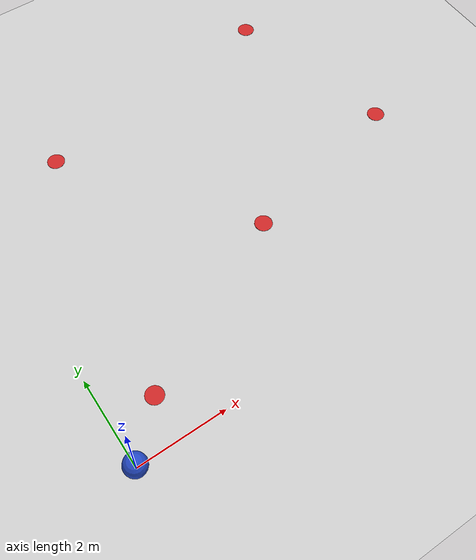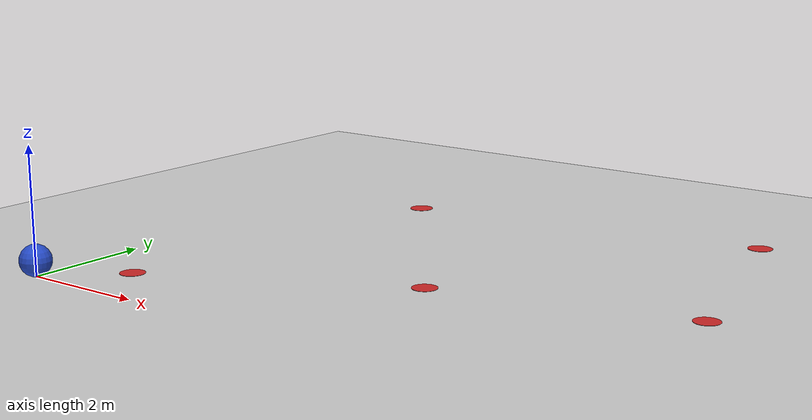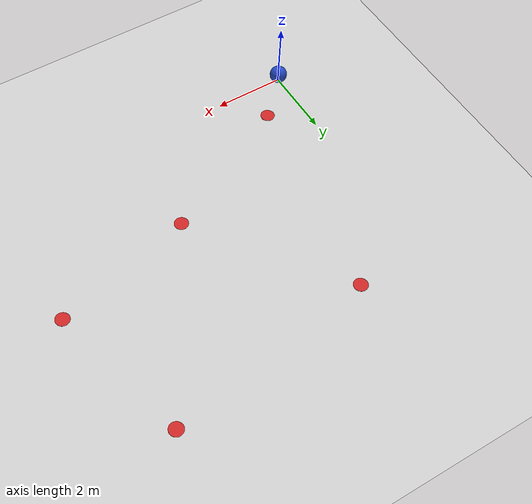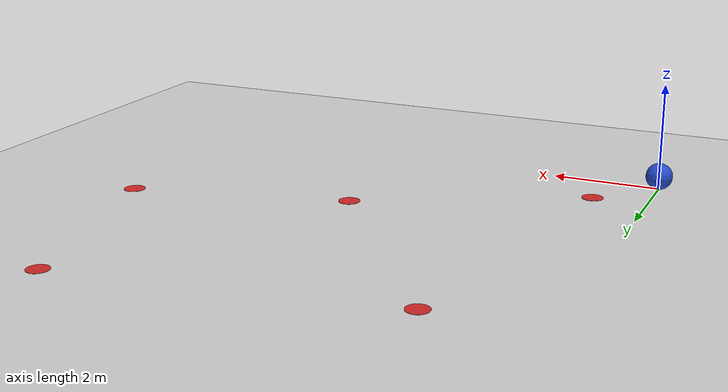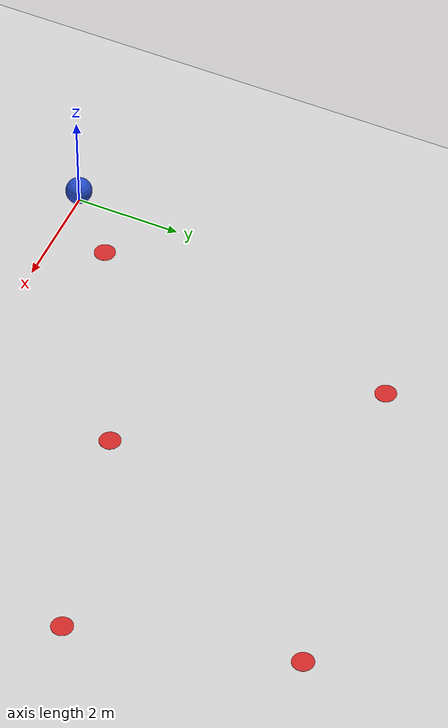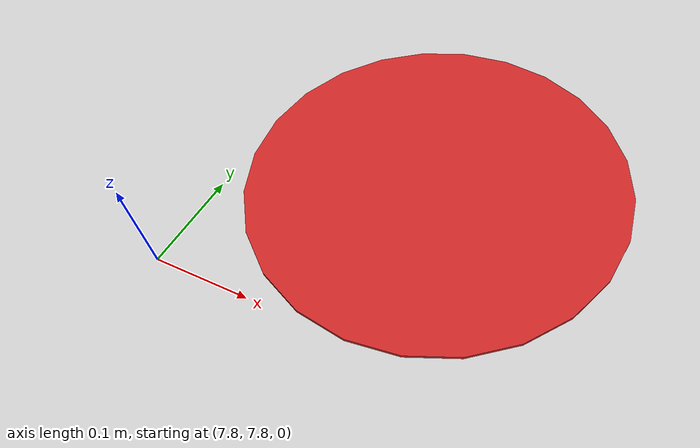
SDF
<?xml version="1.0" encoding="utf-8"?>
<sdf version="1.4">
 <world name="default">
  <!-- Ground Plane -->
  <include>
   <uri>
    model://ground_plane
   </uri>
  </include>
<?xml version="1.0" encoding="utf-8"?>
<model name="point">
 <pose>
  9 4 0 0 0 0
 </pose>
 <static>
  true
 </static>
 <link name="link">
  <collision name="collision">
   <geometry>
    <cylinder>
     <radius>
      .2
     </radius>
     <length>
      .005
     </length>
    </cylinder>
   </geometry>
  </collision>
  <visual name="visual">
   <geometry>
    <cylinder>
     <radius>
      .2
     </radius>
     <length>
      .005
     </length>
    </cylinder>
   </geometry>
   <material>
    <script>
     <uri>
      file://media/materials/scripts/gazebo.material
     </uri>
     <name>
      Gazebo/Red
     </name>
    </script>
   </material>
  </visual>
 </link>
</model><?xml version="1.0" encoding="utf-8"?>
<model name="point">
 <pose>
  8 8 0 0 0 0
 </pose>
 <static>
  true
 </static>
 <link name="link">
  <collision name="collision">
   <geometry>
    <cylinder>
     <radius>
      .2
     </radius>
     <length>
      .005
     </length>
    </cylinder>
   </geometry>
  </collision>
  <visual name="visual">
   <geometry>
    <cylinder>
     <radius>
      .2
     </radius>
     <length>
      .005
     </length>
    </cylinder>
   </geometry>
   <material>
    <script>
     <uri>
      file://media/materials/scripts/gazebo.material
     </uri>
     <name>
      Gazebo/Red
     </name>
    </script>
   </material>
  </visual>
 </link>
</model><?xml version="1.0" encoding="utf-8"?>
<model name="point">
 <pose>
  2 7 0 0 0 0
 </pose>
 <static>
  true
 </static>
 <link name="link">
  <collision name="collision">
   <geometry>
    <cylinder>
     <radius>
      .2
     </radius>
     <length>
      .005
     </length>
    </cylinder>
   </geometry>
  </collision>
  <visual name="visual">
   <geometry>
    <cylinder>
     <radius>
      .2
     </radius>
     <length>
      .005
     </length>
    </cylinder>
   </geometry>
   <material>
    <script>
     <uri>
      file://media/materials/scripts/gazebo.material
     </uri>
     <name>
      Gazebo/Red
     </name>
    </script>
   </material>
  </visual>
 </link>
</model><?xml version="1.0" encoding="utf-8"?>
<model name="point">
 <pose>
  5 3 0 0 0 0
 </pose>
 <static>
  true
 </static>
 <link name="link">
  <collision name="collision">
   <geometry>
    <cylinder>
     <radius>
      .2
     </radius>
     <length>
      .005
     </length>
    </cylinder>
   </geometry>
  </collision>
  <visual name="visual">
   <geometry>
    <cylinder>
     <radius>
      .2
     </radius>
     <length>
      .005
     </length>
    </cylinder>
   </geometry>
   <material>
    <script>
     <uri>
      file://media/materials/scripts/gazebo.material
     </uri>
     <name>
      Gazebo/Red
     </name>
    </script>
   </material>
  </visual>
 </link>
</model><?xml version="1.0" encoding="utf-8"?>
<model name="point">
 <pose>
  1 1 0 0 0 0
 </pose>
 <static>
  true
 </static>
 <link name="link">
  <collision name="collision">
   <geometry>
    <cylinder>
     <radius>
      .2
     </radius>
     <length>
      .005
     </length>
    </cylinder>
   </geometry>
  </collision>
  <visual name="visual">
   <geometry>
    <cylinder>
     <radius>
      .2
     </radius>
     <length>
      .005
     </length>
    </cylinder>
   </geometry>
   <material>
    <script>
     <uri>
      file://media/materials/scripts/gazebo.material
     </uri>
     <name>
      Gazebo/Red
     </name>
    </script>
   </material>
  </visual>
 </link>
</model>  <model name="dyn_marble">
   <link name="chassis">
    <gravity>
     0
    </gravity>
    <pose>
     0 0 0.25 0 0 0
    </pose>
    <collision name="collision">
     <geometry>
      <sphere>
       <radius>
        0.25
       </radius>
      </sphere>
     </geometry>
    </collision>
    <visual name="visual">
     <geometry>
      <sphere>
       <radius>
        0.25
       </radius>
      </sphere>
     </geometry>
     <material>
      <script>
       <uri>
        file://media/materials/scripts/gazebo.material
       </uri>
       <name>
        Gazebo/Blue
       </name>
      </script>
     </material>
    </visual>
   </link>
   <plugin filename="build/libdynamicPoint.so" name="dynamicPoint"/>
  </model>
  <include>
   <uri>
    model://sun
   </uri>
  </include>
 </world>
</sdf>
